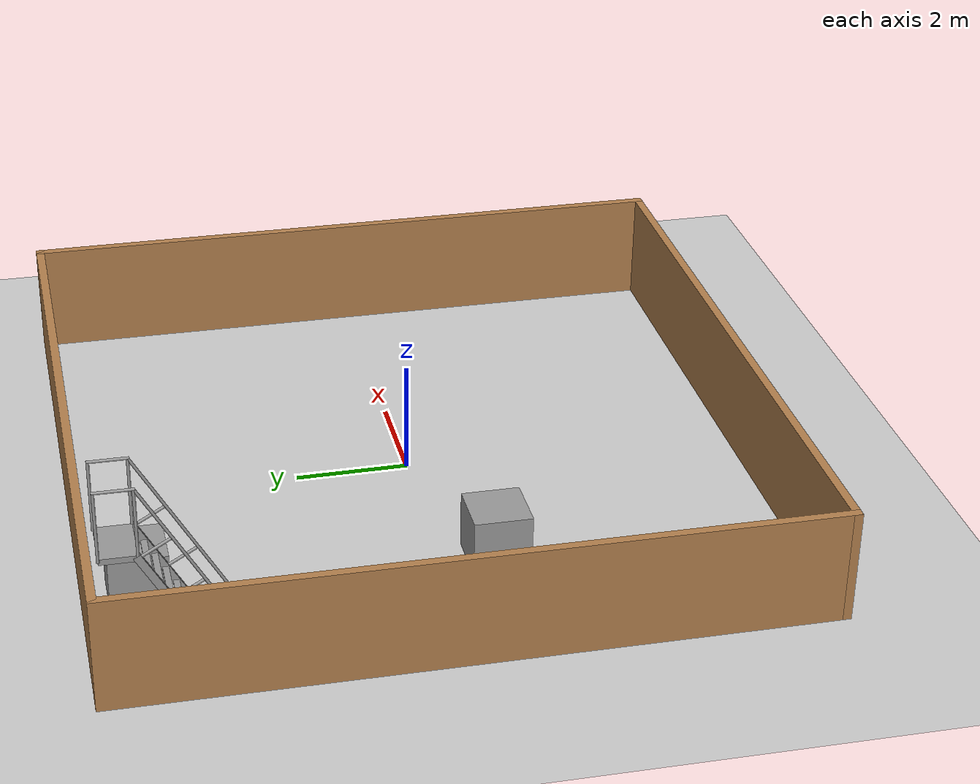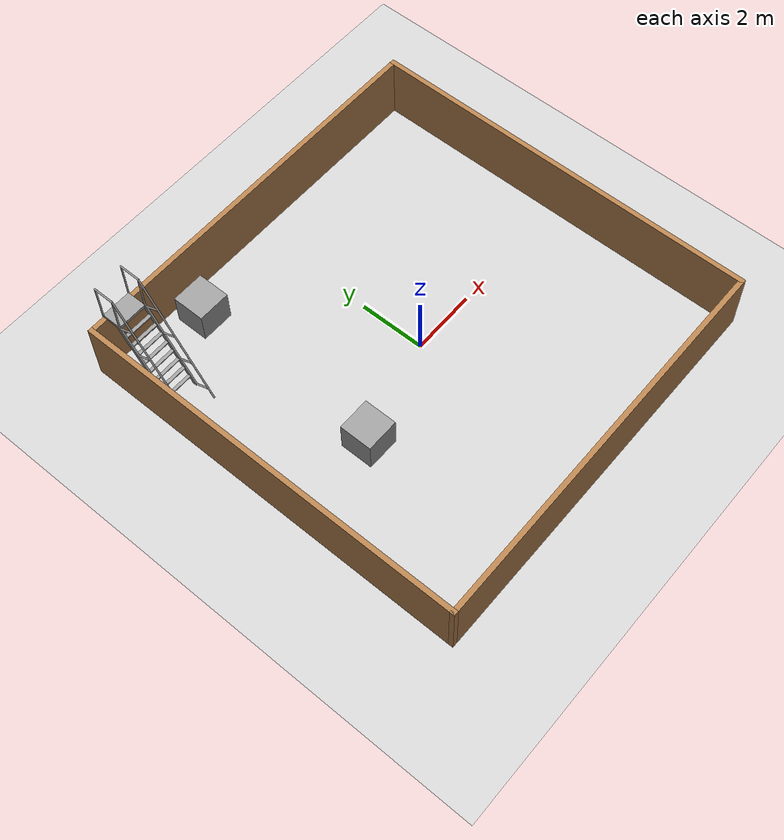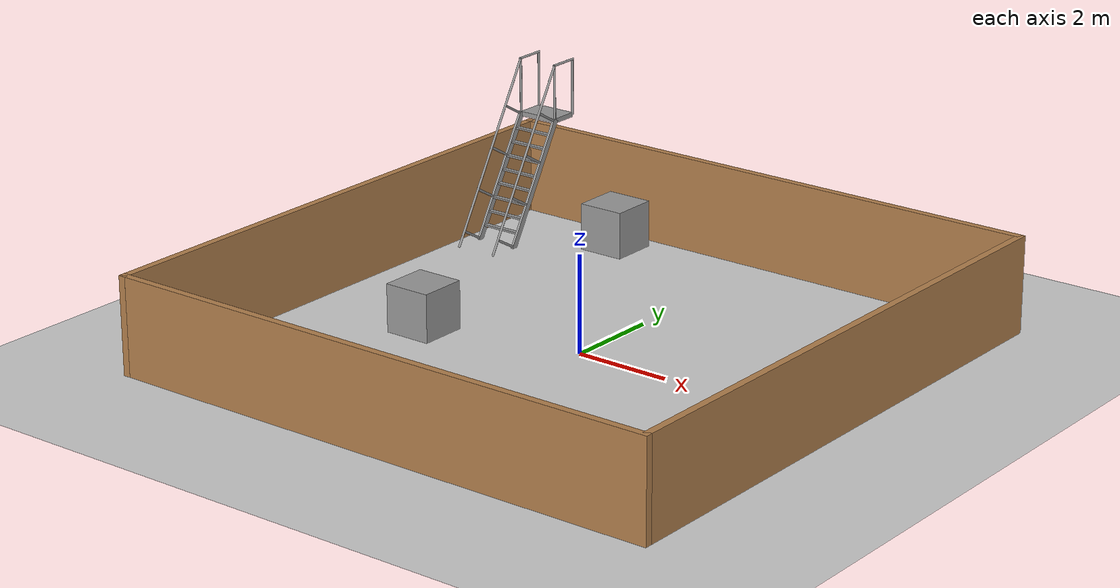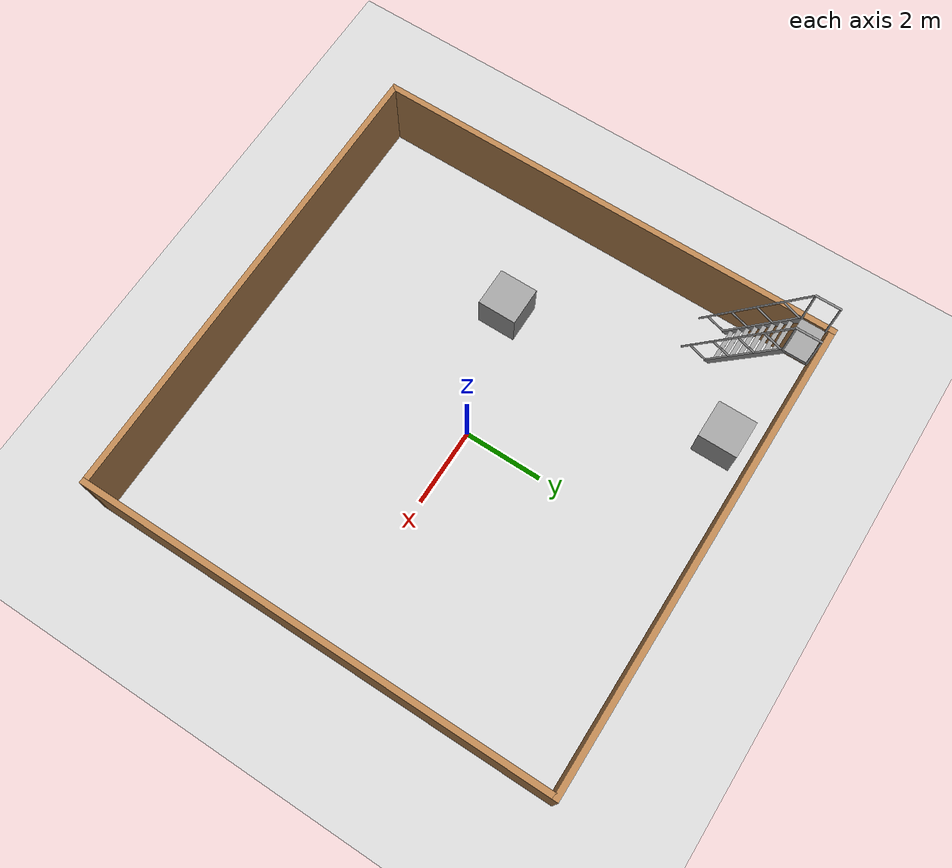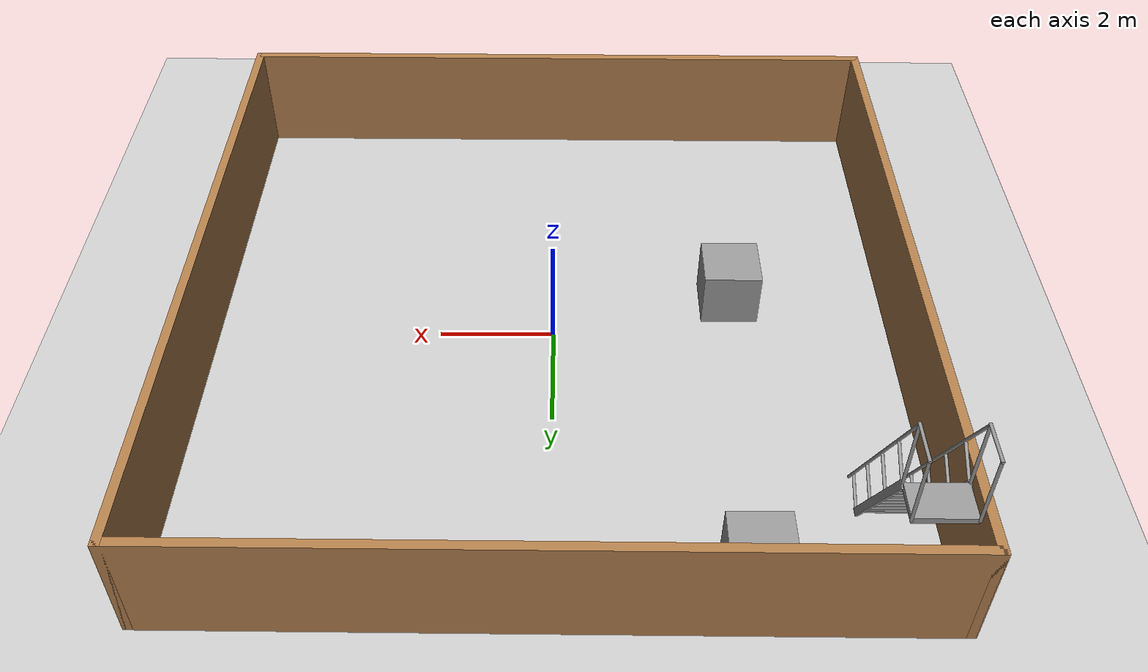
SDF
<sdf version="1.7">
 <world name="default">
  <light name="sun" type="directional">
   <pose>0 0 10 0 -0 0</pose>
   <diffuse>0.8 0.8 0.8 1</diffuse>
   <specular>0.2 0.2 0.2 1</specular>
   <attenuation>
    <range>1000</range>
    <constant>0.9</constant>
    <linear>0.01</linear>
    <quadratic>0.001</quadratic>
   </attenuation>
   <direction>-0.5 0.1 -0.9</direction>
   <spot><inner_angle>0</inner_angle><outer_angle>0</outer_angle><falloff>0</falloff></spot>
  </light>
  <model name="ground_plane">
   <static>1</static>
   <link name="link">
    <collision name="collision">
     <geometry><plane><normal>0 0 1</normal><size>100 100</size></plane></geometry>
     <surface>
      <contact><collide_bitmask>65535</collide_bitmask></contact>
      <friction><ode><mu>100</mu><mu2>50</mu2></ode></friction>
     </surface>
    </collision>
    <visual name="visual">
     <cast_shadows>0</cast_shadows>
     <geometry><plane><normal>0 0 1</normal><size>100 100</size></plane></geometry>
     <material>
      <script><uri>file://media/materials/scripts/gazebo.material</uri><name>Gazebo/Grey</name></script>
     </material>
    </visual>
   </link>
  </model>
  <gravity>0 0 -9.8</gravity>
  <magnetic_field>6e-06 2.3e-05 -4.2e-05</magnetic_field>
  <atmosphere type="adiabatic"/>
  <physics type="ode">
   <max_step_size>0.001</max_step_size>
   <real_time_factor>1</real_time_factor>
   <real_time_update_rate>1000</real_time_update_rate>
  </physics>
  <scene><ambient>0.4 0.4 0.4 1</ambient><background>0.7 0.7 0.7 1</background><shadows>1</shadows></scene>
  <audio><device>default</device></audio>
  <spherical_coordinates>
   <surface_model>EARTH_WGS84</surface_model>
   <latitude_deg>0</latitude_deg>
   <longitude_deg>0</longitude_deg>
   <elevation>0</elevation>
   <heading_deg>0</heading_deg>
  </spherical_coordinates>
  <model name="room_square">
   <pose>-0.001364 0.0006 0 0 -0 0</pose>
   <link name="Wall_5">
    <collision name="Wall_5_Collision">
     <geometry><box><size>12.15 0.15 2</size></box></geometry>
     <pose>0 0 1 0 -0 0</pose>
    </collision>
    <visual name="Wall_5_Visual">
     <pose>0 0 1 0 -0 0</pose>
     <geometry><box><size>12.15 0.15 2</size></box></geometry>
     <material>
      <script><uri>file://media/materials/scripts/gazebo.material</uri><name>Gazebo/Wood</name></script>
      <ambient>1 1 1 1</ambient>
     </material>
     <meta><layer>0</layer></meta>
    </visual>
    <pose>0 -6 0 0 -0 3.14159</pose>
   </link>
   <link name="Wall_6">
    <collision name="Wall_6_Collision">
     <geometry><box><size>12.15 0.15 2</size></box></geometry>
     <pose>0 0 1 0 -0 0</pose>
    </collision>
    <visual name="Wall_6_Visual">
     <pose>0 0 1 0 -0 0</pose>
     <geometry><box><size>12.15 0.15 2</size></box></geometry>
     <material>
      <script><uri>file://media/materials/scripts/gazebo.material</uri><name>Gazebo/Wood</name></script>
      <ambient>1 0.764706 0.305882 1</ambient>
     </material>
     <meta><layer>0</layer></meta>
    </visual>
    <pose>-6 0 0 0 -0 1.5708</pose>
   </link>
   <link name="Wall_7">
    <collision name="Wall_7_Collision">
     <geometry><box><size>12.15 0.15 2</size></box></geometry>
     <pose>0 0 1 0 -0 0</pose>
    </collision>
    <visual name="Wall_7_Visual">
     <pose>0 0 1 0 -0 0</pose>
     <geometry><box><size>12.15 0.15 2</size></box></geometry>
     <material>
      <script><uri>file://media/materials/scripts/gazebo.material</uri><name>Gazebo/Wood</name></script>
      <ambient>1 0.764706 0.305882 1</ambient>
     </material>
     <meta><layer>0</layer></meta>
    </visual>
    <pose>0 6 0 0 -0 0</pose>
   </link>
   <link name="Wall_8">
    <collision name="Wall_8_Collision">
     <geometry><box><size>12.15 0.15 2</size></box></geometry>
     <pose>0 0 1 0 -0 0</pose>
    </collision>
    <visual name="Wall_8_Visual">
     <pose>0 0 1 0 -0 0</pose>
     <geometry><box><size>12.15 0.15 2</size></box></geometry>
     <material>
      <script><uri>file://media/materials/scripts/gazebo.material</uri><name>Gazebo/Wood</name></script>
      <ambient>1 0.764706 0.305882 1</ambient>
     </material>
     <meta><layer>0</layer></meta>
    </visual>
    <pose>6 0 0 0 -0 -1.5708</pose>
   </link>
   <static>1</static>
  </model>
  <model name="unit_box">
   <pose>-3.14812 -0.882217 0.499995 0 1e-05 0</pose>
   <link name="link">
    <inertial>
     <mass>1</mass>
     <inertia>
      <ixx>0.166667</ixx>
      <ixy>0</ixy>
      <ixz>0</ixz>
      <iyy>0.166667</iyy>
      <iyz>0</iyz>
      <izz>0.166667</izz>
     </inertia>
    </inertial>
    <collision name="collision"><geometry><box><size>1 1 1</size></box></geometry></collision>
    <visual name="visual">
     <geometry><box><size>1 1 1</size></box></geometry>
     <material>
      <script><name>Gazebo/Grey</name><uri>file://media/materials/scripts/gazebo.material</uri></script>
     </material>
    </visual>
   </link>
  </model>
  <model name="unit_box_0">
   <pose>-3.05252 5.12915 0.499995 -1e-05 -0 -0</pose>
   <link name="link">
    <inertial>
     <mass>1</mass>
     <inertia>
      <ixx>0.166667</ixx>
      <ixy>0</ixy>
      <ixz>0</ixz>
      <iyy>0.166667</iyy>
      <iyz>0</iyz>
      <izz>0.166667</izz>
     </inertia>
    </inertial>
    <collision name="collision"><geometry><box><size>1 1 1</size></box></geometry></collision>
    <visual name="visual">
     <geometry><box><size>1 1 1</size></box></geometry>
     <material>
      <script><name>Gazebo/Grey</name><uri>file://media/materials/scripts/gazebo.material</uri></script>
     </material>
    </visual>
   </link>
  </model>
  <model name="ladder_60deg_2rails">
   <static>1</static>
   <link name="step0">
    <pose>0 0.15396 0.266667 0 -0 0</pose>
    <inertial>
     <mass>9.75482</mass>
     <inertia>
      <ixx>0.00957124</ixx>
      <iyy>0.65963</iyy>
      <izz>0.666842</izz>
      <ixy>0</ixy>
      <ixz>0</ixz>
      <iyz>0</iyz>
     </inertia>
    </inertial>
    <collision name="collision"><geometry><box><size>0.9 0.1016 0.0381</size></box></geometry></collision>
    <visual name="visual">
     <geometry><box><size>0.9 0.1016 0.0381</size></box></geometry>
     <material>
      <script><uri>file://media/materials/scripts/gazebo.material</uri><name>Gazebo/Grey</name></script>
     </material>
    </visual>
   </link>
   <link name="step1">
    <pose>0 0.30792 0.533333 0 -0 0</pose>
    <inertial>
     <mass>9.75482</mass>
     <inertia>
      <ixx>0.00957124</ixx>
      <iyy>0.65963</iyy>
      <izz>0.666842</izz>
      <ixy>0</ixy>
      <ixz>0</ixz>
      <iyz>0</iyz>
     </inertia>
    </inertial>
    <collision name="collision"><geometry><box><size>0.9 0.1016 0.0381</size></box></geometry></collision>
    <visual name="visual">
     <geometry><box><size>0.9 0.1016 0.0381</size></box></geometry>
     <material>
      <script><uri>file://media/materials/scripts/gazebo.material</uri><name>Gazebo/Grey</name></script>
     </material>
    </visual>
   </link>
   <link name="step2">
    <pose>0 0.46188 0.8 0 -0 0</pose>
    <inertial>
     <mass>9.75482</mass>
     <inertia>
      <ixx>0.00957124</ixx>
      <iyy>0.65963</iyy>
      <izz>0.666842</izz>
      <ixy>0</ixy>
      <ixz>0</ixz>
      <iyz>0</iyz>
     </inertia>
    </inertial>
    <collision name="collision"><geometry><box><size>0.9 0.1016 0.0381</size></box></geometry></collision>
    <visual name="visual">
     <geometry><box><size>0.9 0.1016 0.0381</size></box></geometry>
     <material>
      <script><uri>file://media/materials/scripts/gazebo.material</uri><name>Gazebo/Grey</name></script>
     </material>
    </visual>
   </link>
   <link name="step3">
    <pose>0 0.61584 1.06667 0 -0 0</pose>
    <inertial>
     <mass>9.75482</mass>
     <inertia>
      <ixx>0.00957124</ixx>
      <iyy>0.65963</iyy>
      <izz>0.666842</izz>
      <ixy>0</ixy>
      <ixz>0</ixz>
      <iyz>0</iyz>
     </inertia>
    </inertial>
    <collision name="collision"><geometry><box><size>0.9 0.1016 0.0381</size></box></geometry></collision>
    <visual name="visual">
     <geometry><box><size>0.9 0.1016 0.0381</size></box></geometry>
     <material>
      <script><uri>file://media/materials/scripts/gazebo.material</uri><name>Gazebo/Grey</name></script>
     </material>
    </visual>
   </link>
   <link name="step4">
    <pose>0 0.7698 1.33333 0 -0 0</pose>
    <inertial>
     <mass>9.75482</mass>
     <inertia>
      <ixx>0.00957124</ixx>
      <iyy>0.65963</iyy>
      <izz>0.666842</izz>
      <ixy>0</ixy>
      <ixz>0</ixz>
      <iyz>0</iyz>
     </inertia>
    </inertial>
    <collision name="collision"><geometry><box><size>0.9 0.1016 0.0381</size></box></geometry></collision>
    <visual name="visual">
     <geometry><box><size>0.9 0.1016 0.0381</size></box></geometry>
     <material>
      <script><uri>file://media/materials/scripts/gazebo.material</uri><name>Gazebo/Grey</name></script>
     </material>
    </visual>
   </link>
   <link name="step5">
    <pose>0 0.92376 1.6 0 -0 0</pose>
    <inertial>
     <mass>9.75482</mass>
     <inertia>
      <ixx>0.00957124</ixx>
      <iyy>0.65963</iyy>
      <izz>0.666842</izz>
      <ixy>0</ixy>
      <ixz>0</ixz>
      <iyz>0</iyz>
     </inertia>
    </inertial>
    <collision name="collision"><geometry><box><size>0.9 0.1016 0.0381</size></box></geometry></collision>
    <visual name="visual">
     <geometry><box><size>0.9 0.1016 0.0381</size></box></geometry>
     <material>
      <script><uri>file://media/materials/scripts/gazebo.material</uri><name>Gazebo/Grey</name></script>
     </material>
    </visual>
   </link>
   <link name="step6">
    <pose>0 1.07772 1.86667 0 -0 0</pose>
    <inertial>
     <mass>9.75482</mass>
     <inertia>
      <ixx>0.00957124</ixx>
      <iyy>0.65963</iyy>
      <izz>0.666842</izz>
      <ixy>0</ixy>
      <ixz>0</ixz>
      <iyz>0</iyz>
     </inertia>
    </inertial>
    <collision name="collision"><geometry><box><size>0.9 0.1016 0.0381</size></box></geometry></collision>
    <visual name="visual">
     <geometry><box><size>0.9 0.1016 0.0381</size></box></geometry>
     <material>
      <script><uri>file://media/materials/scripts/gazebo.material</uri><name>Gazebo/Grey</name></script>
     </material>
    </visual>
   </link>
   <link name="step7">
    <pose>0 1.23168 2.13333 0 -0 0</pose>
    <inertial>
     <mass>9.75482</mass>
     <inertia>
      <ixx>0.00957124</ixx>
      <iyy>0.65963</iyy>
      <izz>0.666842</izz>
      <ixy>0</ixy>
      <ixz>0</ixz>
      <iyz>0</iyz>
     </inertia>
    </inertial>
    <collision name="collision"><geometry><box><size>0.9 0.1016 0.0381</size></box></geometry></collision>
    <visual name="visual">
     <geometry><box><size>0.9 0.1016 0.0381</size></box></geometry>
     <material>
      <script><uri>file://media/materials/scripts/gazebo.material</uri><name>Gazebo/Grey</name></script>
     </material>
    </visual>
   </link>
   <link name="landing">
    <pose>0 1.68564 2.4 0 -0 0</pose>
    <inertial>
     <mass>57.6072</mass>
     <inertia><ixx>1.73518</ixx><iyy>3.89545</iyy><izz>5.6167</izz><ixy>0</ixy><ixz>0</ixz><iyz>0</iyz></inertia>
    </inertial>
    <collision name="collision"><geometry><box><size>0.9 0.6 0.1016</size></box></geometry></collision>
    <visual name="visual">
     <geometry><box><size>0.9 0.6 0.1016</size></box></geometry>
     <material>
      <script><uri>file://media/materials/scripts/gazebo.material</uri><name>Gazebo/Grey</name></script>
     </material>
    </visual>
   </link>
   <link name="left_side_wall">
    <pose>-0.45 0.69282 1.2 1.0472 -0 0</pose>
    <collision name="collision"><geometry><box><size>0.0508 2.85128 0.13</size></box></geometry></collision>
    <visual name="visual">
     <geometry><box><size>0.0508 2.85128 0.13</size></box></geometry>
     <material>
      <script><uri>file://media/materials/scripts/gazebo.material</uri><name>Gazebo/Grey</name></script>
     </material>
    </visual>
   </link>
   <link name="right_side_wall">
    <pose>0.45 0.69282 1.2 1.0472 -0 0</pose>
    <collision name="collision"><geometry><box><size>0.0508 2.85128 0.13</size></box></geometry></collision>
    <visual name="visual">
     <geometry><box><size>0.0508 2.85128 0.13</size></box></geometry>
     <material>
      <script><uri>file://media/materials/scripts/gazebo.material</uri><name>Gazebo/Grey</name></script>
     </material>
    </visual>
   </link>
   <link name="left_railing_long">
    <pose>-0.45 0.34282 1.80622 -0.523599 0 0</pose>
    <collision name="collision">
     <geometry><cylinder><radius>0.02413</radius><length>4.17128</length></cylinder></geometry>
    </collision>
    <visual name="visual">
     <geometry><cylinder><radius>0.02413</radius><length>4.17128</length></cylinder></geometry>
     <material>
      <script><uri>file://media/materials/scripts/gazebo.material</uri><name>Gazebo/Grey</name></script>
     </material>
    </visual>
   </link>
   <link name="left_railing_upright0">
    <pose>-0.45 -0.274963 0.15875 1.0472 -0 0</pose>
    <collision name="collision">
     <geometry><cylinder><radius>0.02413</radius><length>0.541218</length></cylinder></geometry>
    </collision>
    <visual name="visual">
     <geometry><cylinder><radius>0.02413</radius><length>0.541218</length></cylinder></geometry>
     <material>
      <script><uri>file://media/materials/scripts/gazebo.material</uri><name>Gazebo/Grey</name></script>
     </material>
    </visual>
   </link>
   <link name="left_railing_upright1">
    <pose>-0.45 0.186917 0.95875 1.0472 -0 0</pose>
    <collision name="collision">
     <geometry><cylinder><radius>0.02413</radius><length>0.541218</length></cylinder></geometry>
    </collision>
    <visual name="visual">
     <geometry><cylinder><radius>0.02413</radius><length>0.541218</length></cylinder></geometry>
     <material>
      <script><uri>file://media/materials/scripts/gazebo.material</uri><name>Gazebo/Grey</name></script>
     </material>
    </visual>
   </link>
   <link name="left_railing_upright2">
    <pose>-0.45 0.648797 1.75875 1.0472 -0 0</pose>
    <collision name="collision">
     <geometry><cylinder><radius>0.02413</radius><length>0.541218</length></cylinder></geometry>
    </collision>
    <visual name="visual">
     <geometry><cylinder><radius>0.02413</radius><length>0.541218</length></cylinder></geometry>
     <material>
      <script><uri>file://media/materials/scripts/gazebo.material</uri><name>Gazebo/Grey</name></script>
     </material>
    </visual>
   </link>
   <link name="left_railing_upright3">
    <pose>-0.45 1.11068 2.55875 1.0472 -0 0</pose>
    <collision name="collision">
     <geometry><cylinder><radius>0.02413</radius><length>0.541218</length></cylinder></geometry>
    </collision>
    <visual name="visual">
     <geometry><cylinder><radius>0.02413</radius><length>0.541218</length></cylinder></geometry>
     <material>
      <script><uri>file://media/materials/scripts/gazebo.material</uri><name>Gazebo/Grey</name></script>
     </material>
    </visual>
   </link>
   <link name="left_railing_landing_top">
    <pose>-0.45 1.68564 3.61244 1.5708 -0 0</pose>
    <collision name="collision">
     <geometry><cylinder><radius>0.02413</radius><length>0.64826</length></cylinder></geometry>
    </collision>
    <visual name="visual">
     <geometry><cylinder><radius>0.02413</radius><length>0.64826</length></cylinder></geometry>
     <material>
      <script><uri>file://media/materials/scripts/gazebo.material</uri><name>Gazebo/Grey</name></script>
     </material>
    </visual>
   </link>
   <link name="left_railing_landing_upright_0">
    <pose>-0.45 1.38564 3.00622 0 -0 0</pose>
    <collision name="collision">
     <geometry><cylinder><radius>0.02413</radius><length>1.21244</length></cylinder></geometry>
    </collision>
    <visual name="visual">
     <geometry><cylinder><radius>0.02413</radius><length>1.21244</length></cylinder></geometry>
     <material>
      <script><uri>file://media/materials/scripts/gazebo.material</uri><name>Gazebo/Grey</name></script>
     </material>
    </visual>
   </link>
   <link name="left_railing_landing_upright_1">
    <pose>-0.45 1.98564 3.00622 0 -0 0</pose>
    <collision name="collision">
     <geometry><cylinder><radius>0.02413</radius><length>1.21244</length></cylinder></geometry>
    </collision>
    <visual name="visual">
     <geometry><cylinder><radius>0.02413</radius><length>1.21244</length></cylinder></geometry>
     <material>
      <script><uri>file://media/materials/scripts/gazebo.material</uri><name>Gazebo/Grey</name></script>
     </material>
    </visual>
   </link>
   <link name="right_railing_long">
    <pose>0.45 0.34282 1.80622 -0.523599 0 0</pose>
    <collision name="collision">
     <geometry><cylinder><radius>0.02413</radius><length>4.17128</length></cylinder></geometry>
    </collision>
    <visual name="visual">
     <geometry><cylinder><radius>0.02413</radius><length>4.17128</length></cylinder></geometry>
     <material>
      <script><uri>file://media/materials/scripts/gazebo.material</uri><name>Gazebo/Grey</name></script>
     </material>
    </visual>
   </link>
   <link name="right_railing_upright0">
    <pose>0.45 -0.274963 0.15875 1.0472 -0 0</pose>
    <collision name="collision">
     <geometry><cylinder><radius>0.02413</radius><length>0.541218</length></cylinder></geometry>
    </collision>
    <visual name="visual">
     <geometry><cylinder><radius>0.02413</radius><length>0.541218</length></cylinder></geometry>
     <material>
      <script><uri>file://media/materials/scripts/gazebo.material</uri><name>Gazebo/Grey</name></script>
     </material>
    </visual>
   </link>
   <link name="right_railing_upright1">
    <pose>0.45 0.186917 0.95875 1.0472 -0 0</pose>
    <collision name="collision">
     <geometry><cylinder><radius>0.02413</radius><length>0.541218</length></cylinder></geometry>
    </collision>
    <visual name="visual">
     <geometry><cylinder><radius>0.02413</radius><length>0.541218</length></cylinder></geometry>
     <material>
      <script><uri>file://media/materials/scripts/gazebo.material</uri><name>Gazebo/Grey</name></script>
     </material>
    </visual>
   </link>
   <link name="right_railing_upright2">
    <pose>0.45 0.648797 1.75875 1.0472 -0 0</pose>
    <collision name="collision">
     <geometry><cylinder><radius>0.02413</radius><length>0.541218</length></cylinder></geometry>
    </collision>
    <visual name="visual">
     <geometry><cylinder><radius>0.02413</radius><length>0.541218</length></cylinder></geometry>
     <material>
      <script><uri>file://media/materials/scripts/gazebo.material</uri><name>Gazebo/Grey</name></script>
     </material>
    </visual>
   </link>
   <link name="right_railing_upright3">
    <pose>0.45 1.11068 2.55875 1.0472 -0 0</pose>
    <collision name="collision">
     <geometry><cylinder><radius>0.02413</radius><length>0.541218</length></cylinder></geometry>
    </collision>
    <visual name="visual">
     <geometry><cylinder><radius>0.02413</radius><length>0.541218</length></cylinder></geometry>
     <material>
      <script><uri>file://media/materials/scripts/gazebo.material</uri><name>Gazebo/Grey</name></script>
     </material>
    </visual>
   </link>
   <link name="right_railing_landing_top">
    <pose>0.45 1.68564 3.61244 1.5708 -0 0</pose>
    <collision name="collision">
     <geometry><cylinder><radius>0.02413</radius><length>0.64826</length></cylinder></geometry>
    </collision>
    <visual name="visual">
     <geometry><cylinder><radius>0.02413</radius><length>0.64826</length></cylinder></geometry>
     <material>
      <script><uri>file://media/materials/scripts/gazebo.material</uri><name>Gazebo/Grey</name></script>
     </material>
    </visual>
   </link>
   <link name="right_railing_landing_upright_0">
    <pose>0.45 1.38564 3.00622 0 -0 0</pose>
    <collision name="collision">
     <geometry><cylinder><radius>0.02413</radius><length>1.21244</length></cylinder></geometry>
    </collision>
    <visual name="visual">
     <geometry><cylinder><radius>0.02413</radius><length>1.21244</length></cylinder></geometry>
     <material>
      <script><uri>file://media/materials/scripts/gazebo.material</uri><name>Gazebo/Grey</name></script>
     </material>
    </visual>
   </link>
   <link name="right_railing_landing_upright_1">
    <pose>0.45 1.98564 3.00622 0 -0 0</pose>
    <collision name="collision">
     <geometry><cylinder><radius>0.02413</radius><length>1.21244</length></cylinder></geometry>
    </collision>
    <visual name="visual">
     <geometry><cylinder><radius>0.02413</radius><length>1.21244</length></cylinder></geometry>
     <material>
      <script><uri>file://media/materials/scripts/gazebo.material</uri><name>Gazebo/Grey</name></script>
     </material>
    </visual>
   </link>
   <pose>-5.18362 3.8586 0 0 -0 0</pose>
  </model>
 </world>
</sdf>
